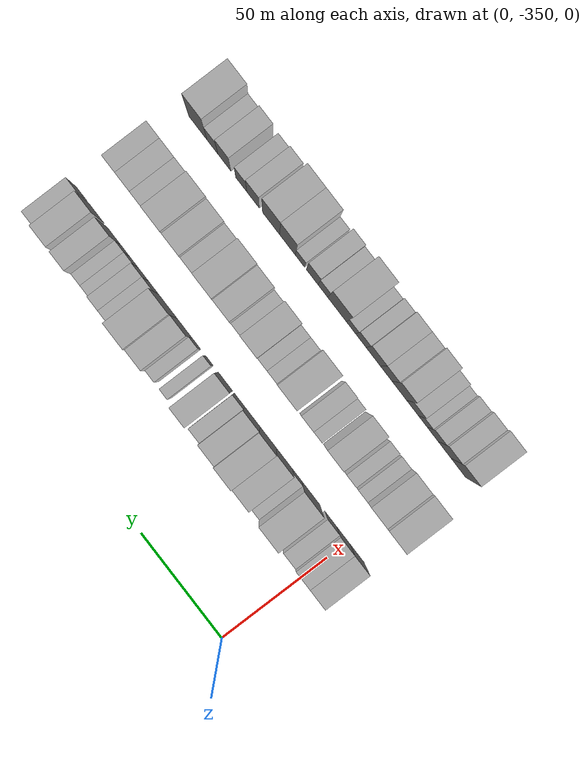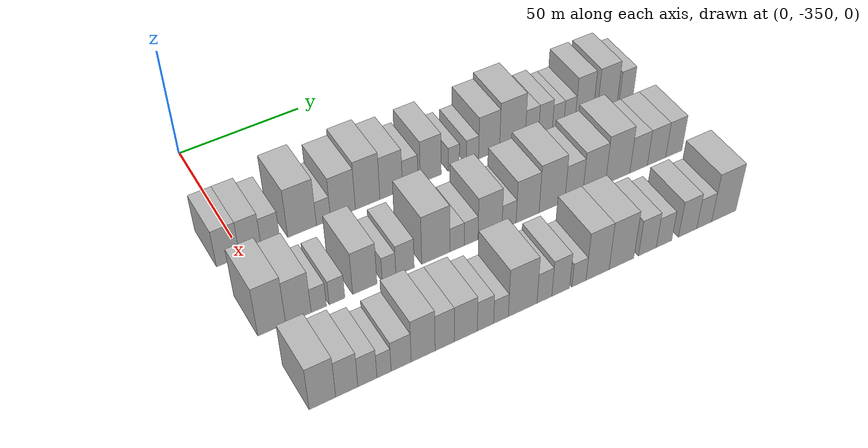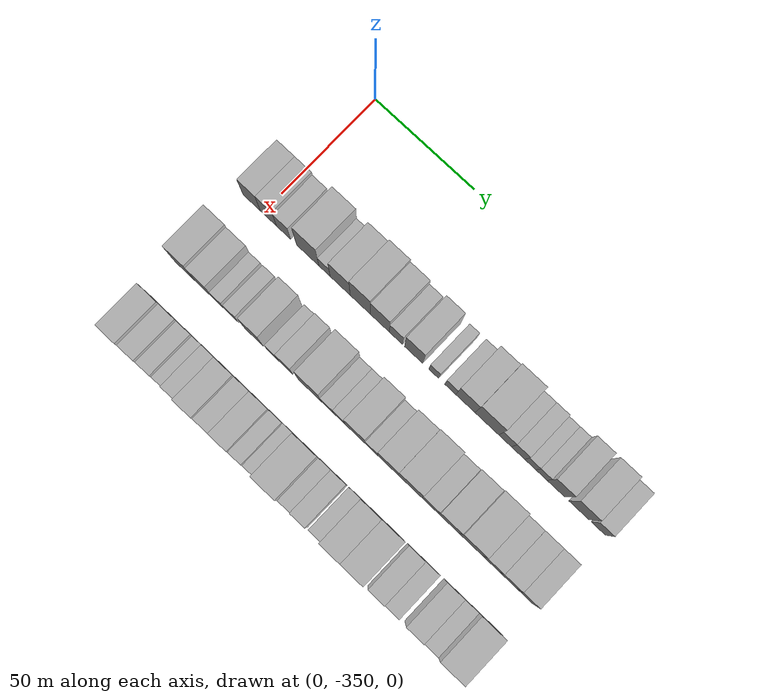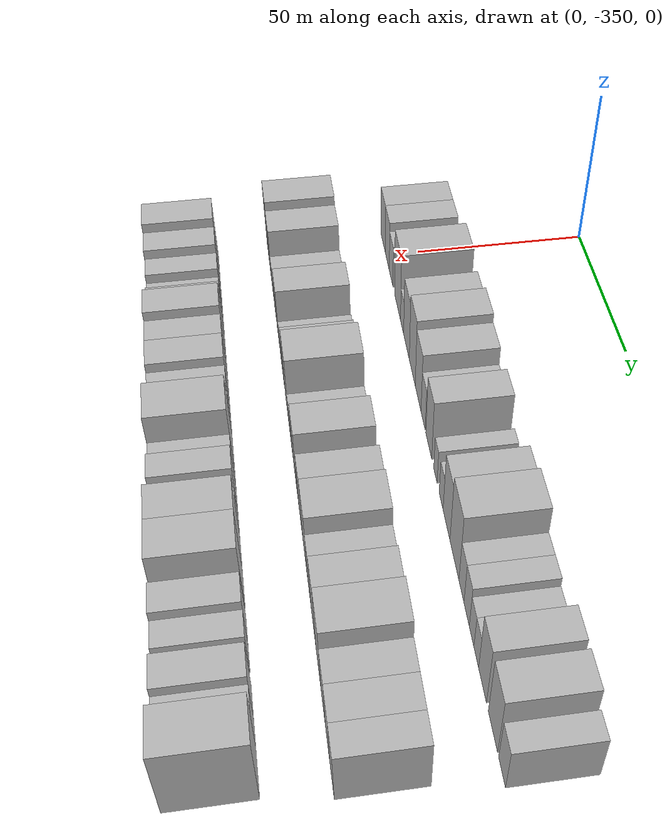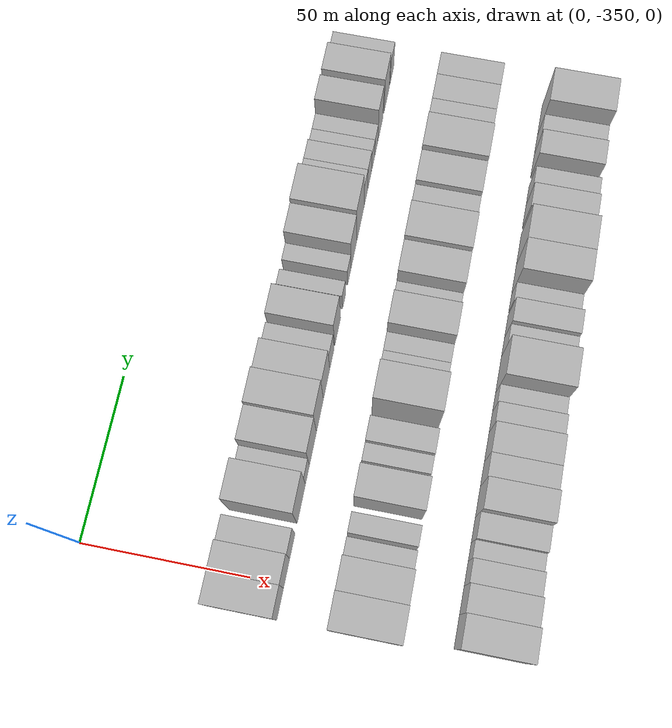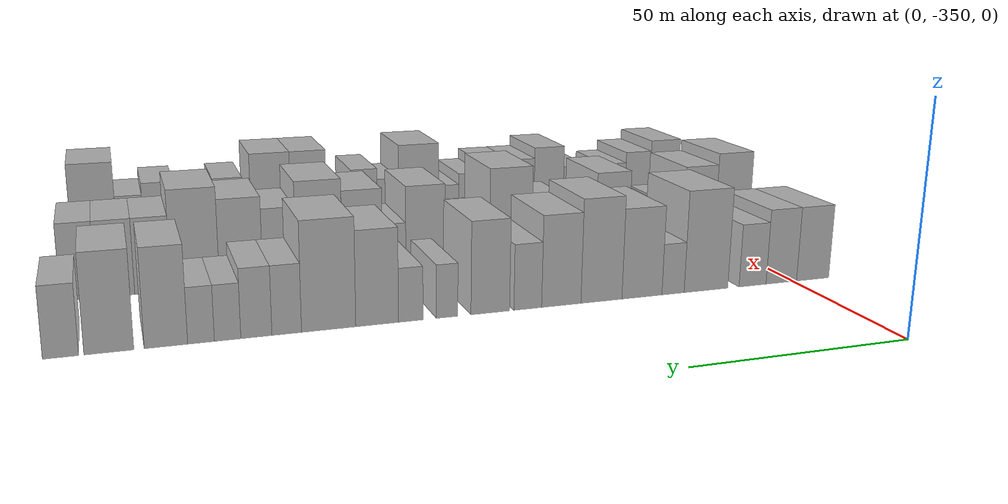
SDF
<sdf version="1.6">
 <world name="default">
  <model name="building_1">
   <static>1</static>
   <pose>50.0000 -355.5543 0 0.000000 0.000000 0.000000</pose>
   <link name="link">
    <pose>0 0 9.00 0 0 0</pose>
    <collision name="collision"><geometry><box><size>20.0000 8.8914 18.0000</size></box></geometry></collision>
    <visual name="visual">
     <cast_shadows>0</cast_shadows>
     <geometry><box><size>20.0000 8.8914 18.0000</size></box></geometry>
     <material>
      <script>
       <uri>model://HANNAS_wall/materials/scripts</uri>
       <uri>model://HANNAS_wall/materials/textures</uri>
       <name>vrc/HANNAS_wall</name>
      </script>
     </material>
    </visual>
   </link>
  </model>
  <model name="building_2">
   <static>1</static>
   <pose>50.0000 -346.9691 0 0.000000 0.000000 0.000000</pose>
   <link name="link">
    <pose>0 0 9.00 0 0 0</pose>
    <collision name="collision"><geometry><box><size>20.0000 8.2791 18.0000</size></box></geometry></collision>
    <visual name="visual">
     <cast_shadows>0</cast_shadows>
     <geometry><box><size>20.0000 8.2791 18.0000</size></box></geometry>
     <material>
      <script>
       <uri>model://HANNAS_wall/materials/scripts</uri>
       <uri>model://HANNAS_wall/materials/textures</uri>
       <name>vrc/HANNAS_wall</name>
      </script>
     </material>
    </visual>
   </link>
  </model>
  <model name="building_3">
   <static>1</static>
   <pose>50.0000 -339.2189 0 0.000000 0.000000 0.000000</pose>
   <link name="link">
    <pose>0 0 7.50 0 0 0</pose>
    <collision name="collision"><geometry><box><size>20.0000 7.2212 15.0000</size></box></geometry></collision>
    <visual name="visual">
     <cast_shadows>0</cast_shadows>
     <geometry><box><size>20.0000 7.2212 15.0000</size></box></geometry>
     <material>
      <script>
       <uri>model://HANNAS_wall/materials/scripts</uri>
       <uri>model://HANNAS_wall/materials/textures</uri>
       <name>vrc/HANNAS_wall</name>
      </script>
     </material>
    </visual>
   </link>
  </model>
  <model name="building_4">
   <static>1</static>
   <pose>50.0000 -326.9329 0 0.000000 0.000000 0.000000</pose>
   <link name="link">
    <pose>0 0 12.00 0 0 0</pose>
    <collision name="collision"><geometry><box><size>20.0000 11.3509 24.0000</size></box></geometry></collision>
    <visual name="visual">
     <cast_shadows>0</cast_shadows>
     <geometry><box><size>20.0000 11.3509 24.0000</size></box></geometry>
     <material>
      <script>
       <uri>model://HANNAS_wall/materials/scripts</uri>
       <uri>model://HANNAS_wall/materials/textures</uri>
       <name>vrc/HANNAS_wall</name>
      </script>
     </material>
    </visual>
   </link>
  </model>
  <model name="building_5">
   <static>1</static>
   <pose>50.0000 -318.4150 0 0.000000 0.000000 0.000000</pose>
   <link name="link">
    <pose>0 0 6.00 0 0 0</pose>
    <collision name="collision"><geometry><box><size>20.0000 5.6850 12.0000</size></box></geometry></collision>
    <visual name="visual">
     <cast_shadows>0</cast_shadows>
     <geometry><box><size>20.0000 5.6850 12.0000</size></box></geometry>
     <material>
      <script>
       <uri>model://HANNAS_wall/materials/scripts</uri>
       <uri>model://HANNAS_wall/materials/textures</uri>
       <name>vrc/HANNAS_wall</name>
      </script>
     </material>
    </visual>
   </link>
  </model>
  <model name="building_6">
   <static>1</static>
   <pose>50.0000 -310.5477 0 0.000000 0.000000 0.000000</pose>
   <link name="link">
    <pose>0 0 10.50 0 0 0</pose>
    <collision name="collision"><geometry><box><size>20.0000 10.0495 21.0000</size></box></geometry></collision>
    <visual name="visual">
     <cast_shadows>0</cast_shadows>
     <geometry><box><size>20.0000 10.0495 21.0000</size></box></geometry>
     <material>
      <script>
       <uri>model://HANNAS_wall/materials/scripts</uri>
       <uri>model://HANNAS_wall/materials/textures</uri>
       <name>vrc/HANNAS_wall</name>
      </script>
     </material>
    </visual>
   </link>
  </model>
  <model name="building_7">
   <static>1</static>
   <pose>50.0000 -300.4793 0 0.000000 0.000000 0.000000</pose>
   <link name="link">
    <pose>0 0 12.00 0 0 0</pose>
    <collision name="collision"><geometry><box><size>20.0000 10.0874 24.0000</size></box></geometry></collision>
    <visual name="visual">
     <cast_shadows>0</cast_shadows>
     <geometry><box><size>20.0000 10.0874 24.0000</size></box></geometry>
     <material>
      <script>
       <uri>model://HANNAS_wall/materials/scripts</uri>
       <uri>model://HANNAS_wall/materials/textures</uri>
       <name>vrc/HANNAS_wall</name>
      </script>
     </material>
    </visual>
   </link>
  </model>
  <model name="building_8">
   <static>1</static>
   <pose>50.0000 -290.7188 0 0.000000 0.000000 0.000000</pose>
   <link name="link">
    <pose>0 0 10.50 0 0 0</pose>
    <collision name="collision"><geometry><box><size>20.0000 9.4337 21.0000</size></box></geometry></collision>
    <visual name="visual">
     <cast_shadows>0</cast_shadows>
     <geometry><box><size>20.0000 9.4337 21.0000</size></box></geometry>
     <material>
      <script>
       <uri>model://HANNAS_wall/materials/scripts</uri>
       <uri>model://HANNAS_wall/materials/textures</uri>
       <name>vrc/HANNAS_wall</name>
      </script>
     </material>
    </visual>
   </link>
  </model>
  <model name="building_9">
   <static>1</static>
   <pose>50.0000 -282.7231 0 0.000000 0.000000 0.000000</pose>
   <link name="link">
    <pose>0 0 7.50 0 0 0</pose>
    <collision name="collision"><geometry><box><size>20.0000 6.5577 15.0000</size></box></geometry></collision>
    <visual name="visual">
     <cast_shadows>0</cast_shadows>
     <geometry><box><size>20.0000 6.5577 15.0000</size></box></geometry>
     <material>
      <script>
       <uri>model://HANNAS_wall/materials/scripts</uri>
       <uri>model://HANNAS_wall/materials/textures</uri>
       <name>vrc/HANNAS_wall</name>
      </script>
     </material>
    </visual>
   </link>
  </model>
  <model name="building_10">
   <static>1</static>
   <pose>50.0000 -273.9683 0 0.000000 0.000000 0.000000</pose>
   <link name="link">
    <pose>0 0 10.50 0 0 0</pose>
    <collision name="collision"><geometry><box><size>20.0000 8.9520 21.0000</size></box></geometry></collision>
    <visual name="visual">
     <cast_shadows>0</cast_shadows>
     <geometry><box><size>20.0000 8.9520 21.0000</size></box></geometry>
     <material>
      <script>
       <uri>model://HANNAS_wall/materials/scripts</uri>
       <uri>model://HANNAS_wall/materials/textures</uri>
       <name>vrc/HANNAS_wall</name>
      </script>
     </material>
    </visual>
   </link>
  </model>
  <model name="building_11">
   <static>1</static>
   <pose>50.0000 -264.0726 0 0.000000 0.000000 0.000000</pose>
   <link name="link">
    <pose>0 0 6.00 0 0 0</pose>
    <collision name="collision"><geometry><box><size>20.0000 4.8393 12.0000</size></box></geometry></collision>
    <visual name="visual">
     <cast_shadows>0</cast_shadows>
     <geometry><box><size>20.0000 4.8393 12.0000</size></box></geometry>
     <material>
      <script>
       <uri>model://HANNAS_wall/materials/scripts</uri>
       <uri>model://HANNAS_wall/materials/textures</uri>
       <name>vrc/HANNAS_wall</name>
      </script>
     </material>
    </visual>
   </link>
  </model>
  <model name="building_12">
   <static>1</static>
   <pose>50.0000 -255.9314 0 0.000000 0.000000 0.000000</pose>
   <link name="link">
    <pose>0 0 6.00 0 0 0</pose>
    <collision name="collision"><geometry><box><size>20.0000 5.4432 12.0000</size></box></geometry></collision>
    <visual name="visual">
     <cast_shadows>0</cast_shadows>
     <geometry><box><size>20.0000 5.4432 12.0000</size></box></geometry>
     <material>
      <script>
       <uri>model://HANNAS_wall/materials/scripts</uri>
       <uri>model://HANNAS_wall/materials/textures</uri>
       <name>vrc/HANNAS_wall</name>
      </script>
     </material>
    </visual>
   </link>
  </model>
  <model name="building_13">
   <static>1</static>
   <pose>50.0000 -248.5627 0 0.000000 0.000000 0.000000</pose>
   <link name="link">
    <pose>0 0 10.50 0 0 0</pose>
    <collision name="collision"><geometry><box><size>20.0000 9.2942 21.0000</size></box></geometry></collision>
    <visual name="visual">
     <cast_shadows>0</cast_shadows>
     <geometry><box><size>20.0000 9.2942 21.0000</size></box></geometry>
     <material>
      <script>
       <uri>model://HANNAS_wall/materials/scripts</uri>
       <uri>model://HANNAS_wall/materials/textures</uri>
       <name>vrc/HANNAS_wall</name>
      </script>
     </material>
    </visual>
   </link>
  </model>
  <model name="building_14">
   <static>1</static>
   <pose>50.0000 -238.1467 0 0.000000 0.000000 0.000000</pose>
   <link name="link">
    <pose>0 0 12.00 0 0 0</pose>
    <collision name="collision"><geometry><box><size>20.0000 11.5378 24.0000</size></box></geometry></collision>
    <visual name="visual">
     <cast_shadows>0</cast_shadows>
     <geometry><box><size>20.0000 11.5378 24.0000</size></box></geometry>
     <material>
      <script>
       <uri>model://HANNAS_wall/materials/scripts</uri>
       <uri>model://HANNAS_wall/materials/textures</uri>
       <name>vrc/HANNAS_wall</name>
      </script>
     </material>
    </visual>
   </link>
  </model>
  <model name="building_15">
   <static>1</static>
   <pose>50.0000 -229.2953 0 0.000000 0.000000 0.000000</pose>
   <link name="link">
    <pose>0 0 7.50 0 0 0</pose>
    <collision name="collision"><geometry><box><size>20.0000 6.1651 15.0000</size></box></geometry></collision>
    <visual name="visual">
     <cast_shadows>0</cast_shadows>
     <geometry><box><size>20.0000 6.1651 15.0000</size></box></geometry>
     <material>
      <script>
       <uri>model://HANNAS_wall/materials/scripts</uri>
       <uri>model://HANNAS_wall/materials/textures</uri>
       <name>vrc/HANNAS_wall</name>
      </script>
     </material>
    </visual>
   </link>
  </model>
  <model name="building_16">
   <static>1</static>
   <pose>50.0000 -223.0267 0 0.000000 0.000000 0.000000</pose>
   <link name="link">
    <pose>0 0 7.50 0 0 0</pose>
    <collision name="collision"><geometry><box><size>20.0000 6.3720 15.0000</size></box></geometry></collision>
    <visual name="visual">
     <cast_shadows>0</cast_shadows>
     <geometry><box><size>20.0000 6.3720 15.0000</size></box></geometry>
     <material>
      <script>
       <uri>model://HANNAS_wall/materials/scripts</uri>
       <uri>model://HANNAS_wall/materials/textures</uri>
       <name>vrc/HANNAS_wall</name>
      </script>
     </material>
    </visual>
   </link>
  </model>
  <model name="building_17">
   <static>1</static>
   <pose>50.0000 -217.1712 0 0.000000 0.000000 0.000000</pose>
   <link name="link">
    <pose>0 0 6.00 0 0 0</pose>
    <collision name="collision"><geometry><box><size>20.0000 5.3390 12.0000</size></box></geometry></collision>
    <visual name="visual">
     <cast_shadows>0</cast_shadows>
     <geometry><box><size>20.0000 5.3390 12.0000</size></box></geometry>
     <material>
      <script>
       <uri>model://HANNAS_wall/materials/scripts</uri>
       <uri>model://HANNAS_wall/materials/textures</uri>
       <name>vrc/HANNAS_wall</name>
      </script>
     </material>
    </visual>
   </link>
  </model>
  <model name="building_18">
   <static>1</static>
   <pose>50.0000 -211.8315 0 0.000000 0.000000 0.000000</pose>
   <link name="link">
    <pose>0 0 6.00 0 0 0</pose>
    <collision name="collision"><geometry><box><size>20.0000 5.3403 12.0000</size></box></geometry></collision>
    <visual name="visual">
     <cast_shadows>0</cast_shadows>
     <geometry><box><size>20.0000 5.3403 12.0000</size></box></geometry>
     <material>
      <script>
       <uri>model://HANNAS_wall/materials/scripts</uri>
       <uri>model://HANNAS_wall/materials/textures</uri>
       <name>vrc/HANNAS_wall</name>
      </script>
     </material>
    </visual>
   </link>
  </model>
  <model name="building_19">
   <static>1</static>
   <pose>50.0000 -204.9044 0 0.000000 0.000000 0.000000</pose>
   <link name="link">
    <pose>0 0 10.50 0 0 0</pose>
    <collision name="collision"><geometry><box><size>20.0000 8.5139 21.0000</size></box></geometry></collision>
    <visual name="visual">
     <cast_shadows>0</cast_shadows>
     <geometry><box><size>20.0000 8.5139 21.0000</size></box></geometry>
     <material>
      <script>
       <uri>model://HANNAS_wall/materials/scripts</uri>
       <uri>model://HANNAS_wall/materials/textures</uri>
       <name>vrc/HANNAS_wall</name>
      </script>
     </material>
    </visual>
   </link>
  </model>
  <model name="building_20">
   <static>1</static>
   <pose>50.0000 -193.8881 0 0.000000 0.000000 0.000000</pose>
   <link name="link">
    <pose>0 0 10.50 0 0 0</pose>
    <collision name="collision"><geometry><box><size>20.0000 9.5186 21.0000</size></box></geometry></collision>
    <visual name="visual">
     <cast_shadows>0</cast_shadows>
     <geometry><box><size>20.0000 9.5186 21.0000</size></box></geometry>
     <material>
      <script>
       <uri>model://HANNAS_wall/materials/scripts</uri>
       <uri>model://HANNAS_wall/materials/textures</uri>
       <name>vrc/HANNAS_wall</name>
      </script>
     </material>
    </visual>
   </link>
  </model>
  <model name="building_21">
   <static>1</static>
   <pose>50.0000 -184.7525 0 0.000000 0.000000 0.000000</pose>
   <link name="link">
    <pose>0 0 7.50 0 0 0</pose>
    <collision name="collision"><geometry><box><size>20.0000 6.7527 15.0000</size></box></geometry></collision>
    <visual name="visual">
     <cast_shadows>0</cast_shadows>
     <geometry><box><size>20.0000 6.7527 15.0000</size></box></geometry>
     <material>
      <script>
       <uri>model://HANNAS_wall/materials/scripts</uri>
       <uri>model://HANNAS_wall/materials/textures</uri>
       <name>vrc/HANNAS_wall</name>
      </script>
     </material>
    </visual>
   </link>
  </model>
  <model name="building_80">
   <static>1</static>
   <pose>85.0000 -354.8889 0 0.000000 0.000000 0.000000</pose>
   <link name="link">
    <pose>0 0 12.00 0 0 0</pose>
    <collision name="collision"><geometry><box><size>20.0000 10.2222 24.0000</size></box></geometry></collision>
    <visual name="visual">
     <cast_shadows>0</cast_shadows>
     <geometry><box><size>20.0000 10.2222 24.0000</size></box></geometry>
     <material>
      <script>
       <uri>model://HANNAS_wall/materials/scripts</uri>
       <uri>model://HANNAS_wall/materials/textures</uri>
       <name>vrc/HANNAS_wall</name>
      </script>
     </material>
    </visual>
   </link>
  </model>
  <model name="building_81">
   <static>1</static>
   <pose>85.0000 -345.0413 0 0.000000 0.000000 0.000000</pose>
   <link name="link">
    <pose>0 0 10.50 0 0 0</pose>
    <collision name="collision"><geometry><box><size>20.0000 9.4729 21.0000</size></box></geometry></collision>
    <visual name="visual">
     <cast_shadows>0</cast_shadows>
     <geometry><box><size>20.0000 9.4729 21.0000</size></box></geometry>
     <material>
      <script>
       <uri>model://HANNAS_wall/materials/scripts</uri>
       <uri>model://HANNAS_wall/materials/textures</uri>
       <name>vrc/HANNAS_wall</name>
      </script>
     </material>
    </visual>
   </link>
  </model>
  <model name="building_82">
   <static>1</static>
   <pose>85.0000 -337.4258 0 0.000000 0.000000 0.000000</pose>
   <link name="link">
    <pose>0 0 6.00 0 0 0</pose>
    <collision name="collision"><geometry><box><size>20.0000 5.7582 12.0000</size></box></geometry></collision>
    <visual name="visual">
     <cast_shadows>0</cast_shadows>
     <geometry><box><size>20.0000 5.7582 12.0000</size></box></geometry>
     <material>
      <script>
       <uri>model://HANNAS_wall/materials/scripts</uri>
       <uri>model://HANNAS_wall/materials/textures</uri>
       <name>vrc/HANNAS_wall</name>
      </script>
     </material>
    </visual>
   </link>
  </model>
  <model name="building_83">
   <static>1</static>
   <pose>85.0000 -330.5669 0 0.000000 0.000000 0.000000</pose>
   <link name="link">
    <pose>0 0 6.00 0 0 0</pose>
    <collision name="collision"><geometry><box><size>20.0000 5.9597 12.0000</size></box></geometry></collision>
    <visual name="visual">
     <cast_shadows>0</cast_shadows>
     <geometry><box><size>20.0000 5.9597 12.0000</size></box></geometry>
     <material>
      <script>
       <uri>model://HANNAS_wall/materials/scripts</uri>
       <uri>model://HANNAS_wall/materials/textures</uri>
       <name>vrc/HANNAS_wall</name>
      </script>
     </material>
    </visual>
   </link>
  </model>
  <model name="building_84">
   <static>1</static>
   <pose>85.0000 -319.8763 0 0.000000 0.000000 0.000000</pose>
   <link name="link">
    <pose>0 0 10.50 0 0 0</pose>
    <collision name="collision"><geometry><box><size>20.0000 9.4215 21.0000</size></box></geometry></collision>
    <visual name="visual">
     <cast_shadows>0</cast_shadows>
     <geometry><box><size>20.0000 9.4215 21.0000</size></box></geometry>
     <material>
      <script>
       <uri>model://HANNAS_wall/materials/scripts</uri>
       <uri>model://HANNAS_wall/materials/textures</uri>
       <name>vrc/HANNAS_wall</name>
      </script>
     </material>
    </visual>
   </link>
  </model>
  <model name="building_85">
   <static>1</static>
   <pose>85.0000 -310.4702 0 0.000000 0.000000 0.000000</pose>
   <link name="link">
    <pose>0 0 6.00 0 0 0</pose>
    <collision name="collision"><geometry><box><size>20.0000 5.3906 12.0000</size></box></geometry></collision>
    <visual name="visual">
     <cast_shadows>0</cast_shadows>
     <geometry><box><size>20.0000 5.3906 12.0000</size></box></geometry>
     <material>
      <script>
       <uri>model://HANNAS_wall/materials/scripts</uri>
       <uri>model://HANNAS_wall/materials/textures</uri>
       <name>vrc/HANNAS_wall</name>
      </script>
     </material>
    </visual>
   </link>
  </model>
  <model name="building_86">
   <static>1</static>
   <pose>85.0000 -304.1264 0 0.000000 0.000000 0.000000</pose>
   <link name="link">
    <pose>0 0 7.50 0 0 0</pose>
    <collision name="collision"><geometry><box><size>20.0000 7.2970 15.0000</size></box></geometry></collision>
    <visual name="visual">
     <cast_shadows>0</cast_shadows>
     <geometry><box><size>20.0000 7.2970 15.0000</size></box></geometry>
     <material>
      <script>
       <uri>model://HANNAS_wall/materials/scripts</uri>
       <uri>model://HANNAS_wall/materials/textures</uri>
       <name>vrc/HANNAS_wall</name>
      </script>
     </material>
    </visual>
   </link>
  </model>
  <model name="building_87">
   <static>1</static>
   <pose>85.0000 -291.8405 0 0.000000 0.000000 0.000000</pose>
   <link name="link">
    <pose>0 0 12.00 0 0 0</pose>
    <collision name="collision"><geometry><box><size>20.0000 11.2748 24.0000</size></box></geometry></collision>
    <visual name="visual">
     <cast_shadows>0</cast_shadows>
     <geometry><box><size>20.0000 11.2748 24.0000</size></box></geometry>
     <material>
      <script>
       <uri>model://HANNAS_wall/materials/scripts</uri>
       <uri>model://HANNAS_wall/materials/textures</uri>
       <name>vrc/HANNAS_wall</name>
      </script>
     </material>
    </visual>
   </link>
  </model>
  <model name="building_88">
   <static>1</static>
   <pose>85.0000 -283.2173 0 0.000000 0.000000 0.000000</pose>
   <link name="link">
    <pose>0 0 6.00 0 0 0</pose>
    <collision name="collision"><geometry><box><size>20.0000 5.9716 12.0000</size></box></geometry></collision>
    <visual name="visual">
     <cast_shadows>0</cast_shadows>
     <geometry><box><size>20.0000 5.9716 12.0000</size></box></geometry>
     <material>
      <script>
       <uri>model://HANNAS_wall/materials/scripts</uri>
       <uri>model://HANNAS_wall/materials/textures</uri>
       <name>vrc/HANNAS_wall</name>
      </script>
     </material>
    </visual>
   </link>
  </model>
  <model name="building_89">
   <static>1</static>
   <pose>85.0000 -277.3785 0 0.000000 0.000000 0.000000</pose>
   <link name="link">
    <pose>0 0 6.00 0 0 0</pose>
    <collision name="collision"><geometry><box><size>20.0000 5.7058 12.0000</size></box></geometry></collision>
    <visual name="visual">
     <cast_shadows>0</cast_shadows>
     <geometry><box><size>20.0000 5.7058 12.0000</size></box></geometry>
     <material>
      <script>
       <uri>model://HANNAS_wall/materials/scripts</uri>
       <uri>model://HANNAS_wall/materials/textures</uri>
       <name>vrc/HANNAS_wall</name>
      </script>
     </material>
    </visual>
   </link>
  </model>
  <model name="building_90">
   <static>1</static>
   <pose>85.0000 -269.5263 0 0.000000 0.000000 0.000000</pose>
   <link name="link">
    <pose>0 0 10.50 0 0 0</pose>
    <collision name="collision"><geometry><box><size>20.0000 9.9986 21.0000</size></box></geometry></collision>
    <visual name="visual">
     <cast_shadows>0</cast_shadows>
     <geometry><box><size>20.0000 9.9986 21.0000</size></box></geometry>
     <material>
      <script>
       <uri>model://HANNAS_wall/materials/scripts</uri>
       <uri>model://HANNAS_wall/materials/textures</uri>
       <name>vrc/HANNAS_wall</name>
      </script>
     </material>
    </visual>
   </link>
  </model>
  <model name="building_91">
   <static>1</static>
   <pose>85.0000 -261.5423 0 0.000000 0.000000 0.000000</pose>
   <link name="link">
    <pose>0 0 6.00 0 0 0</pose>
    <collision name="collision"><geometry><box><size>20.0000 5.9695 12.0000</size></box></geometry></collision>
    <visual name="visual">
     <cast_shadows>0</cast_shadows>
     <geometry><box><size>20.0000 5.9695 12.0000</size></box></geometry>
     <material>
      <script>
       <uri>model://HANNAS_wall/materials/scripts</uri>
       <uri>model://HANNAS_wall/materials/textures</uri>
       <name>vrc/HANNAS_wall</name>
      </script>
     </material>
    </visual>
   </link>
  </model>
  <model name="building_92">
   <static>1</static>
   <pose>85.0000 -253.6168 0 0.000000 0.000000 0.000000</pose>
   <link name="link">
    <pose>0 0 10.50 0 0 0</pose>
    <collision name="collision"><geometry><box><size>20.0000 9.8814 21.0000</size></box></geometry></collision>
    <visual name="visual">
     <cast_shadows>0</cast_shadows>
     <geometry><box><size>20.0000 9.8814 21.0000</size></box></geometry>
     <material>
      <script>
       <uri>model://HANNAS_wall/materials/scripts</uri>
       <uri>model://HANNAS_wall/materials/textures</uri>
       <name>vrc/HANNAS_wall</name>
      </script>
     </material>
    </visual>
   </link>
  </model>
  <model name="building_93">
   <static>1</static>
   <pose>85.0000 -243.0681 0 0.000000 0.000000 0.000000</pose>
   <link name="link">
    <pose>0 0 12.00 0 0 0</pose>
    <collision name="collision"><geometry><box><size>20.0000 11.2159 24.0000</size></box></geometry></collision>
    <visual name="visual">
     <cast_shadows>0</cast_shadows>
     <geometry><box><size>20.0000 11.2159 24.0000</size></box></geometry>
     <material>
      <script>
       <uri>model://HANNAS_wall/materials/scripts</uri>
       <uri>model://HANNAS_wall/materials/textures</uri>
       <name>vrc/HANNAS_wall</name>
      </script>
     </material>
    </visual>
   </link>
  </model>
  <model name="building_94">
   <static>1</static>
   <pose>85.0000 -233.4861 0 0.000000 0.000000 0.000000</pose>
   <link name="link">
    <pose>0 0 9.00 0 0 0</pose>
    <collision name="collision"><geometry><box><size>20.0000 7.9481 18.0000</size></box></geometry></collision>
    <visual name="visual">
     <cast_shadows>0</cast_shadows>
     <geometry><box><size>20.0000 7.9481 18.0000</size></box></geometry>
     <material>
      <script>
       <uri>model://HANNAS_wall/materials/scripts</uri>
       <uri>model://HANNAS_wall/materials/textures</uri>
       <name>vrc/HANNAS_wall</name>
      </script>
     </material>
    </visual>
   </link>
  </model>
  <model name="building_95">
   <static>1</static>
   <pose>85.0000 -224.4454 0 0.000000 0.000000 0.000000</pose>
   <link name="link">
    <pose>0 0 10.50 0 0 0</pose>
    <collision name="collision"><geometry><box><size>20.0000 10.1334 21.0000</size></box></geometry></collision>
    <visual name="visual">
     <cast_shadows>0</cast_shadows>
     <geometry><box><size>20.0000 10.1334 21.0000</size></box></geometry>
     <material>
      <script>
       <uri>model://HANNAS_wall/materials/scripts</uri>
       <uri>model://HANNAS_wall/materials/textures</uri>
       <name>vrc/HANNAS_wall</name>
      </script>
     </material>
    </visual>
   </link>
  </model>
  <model name="building_96">
   <static>1</static>
   <pose>85.0000 -213.8210 0 0.000000 0.000000 0.000000</pose>
   <link name="link">
    <pose>0 0 12.00 0 0 0</pose>
    <collision name="collision"><geometry><box><size>20.0000 11.1152 24.0000</size></box></geometry></collision>
    <visual name="visual">
     <cast_shadows>0</cast_shadows>
     <geometry><box><size>20.0000 11.1152 24.0000</size></box></geometry>
     <material>
      <script>
       <uri>model://HANNAS_wall/materials/scripts</uri>
       <uri>model://HANNAS_wall/materials/textures</uri>
       <name>vrc/HANNAS_wall</name>
      </script>
     </material>
    </visual>
   </link>
  </model>
  <model name="building_97">
   <static>1</static>
   <pose>85.0000 -204.2113 0 0.000000 0.000000 0.000000</pose>
   <link name="link">
    <pose>0 0 9.00 0 0 0</pose>
    <collision name="collision"><geometry><box><size>20.0000 8.1043 18.0000</size></box></geometry></collision>
    <visual name="visual">
     <cast_shadows>0</cast_shadows>
     <geometry><box><size>20.0000 8.1043 18.0000</size></box></geometry>
     <material>
      <script>
       <uri>model://HANNAS_wall/materials/scripts</uri>
       <uri>model://HANNAS_wall/materials/textures</uri>
       <name>vrc/HANNAS_wall</name>
      </script>
     </material>
    </visual>
   </link>
  </model>
  <model name="building_98">
   <static>1</static>
   <pose>85.0000 -195.8893 0 0.000000 0.000000 0.000000</pose>
   <link name="link">
    <pose>0 0 9.00 0 0 0</pose>
    <collision name="collision"><geometry><box><size>20.0000 8.5395 18.0000</size></box></geometry></collision>
    <visual name="visual">
     <cast_shadows>0</cast_shadows>
     <geometry><box><size>20.0000 8.5395 18.0000</size></box></geometry>
     <material>
      <script>
       <uri>model://HANNAS_wall/materials/scripts</uri>
       <uri>model://HANNAS_wall/materials/textures</uri>
       <name>vrc/HANNAS_wall</name>
      </script>
     </material>
    </visual>
   </link>
  </model>
  <model name="building_99">
   <static>1</static>
   <pose>85.0000 -187.7762 0 0.000000 0.000000 0.000000</pose>
   <link name="link">
    <pose>0 0 9.00 0 0 0</pose>
    <collision name="collision"><geometry><box><size>20.0000 7.6868 18.0000</size></box></geometry></collision>
    <visual name="visual">
     <cast_shadows>0</cast_shadows>
     <geometry><box><size>20.0000 7.6868 18.0000</size></box></geometry>
     <material>
      <script>
       <uri>model://HANNAS_wall/materials/scripts</uri>
       <uri>model://HANNAS_wall/materials/textures</uri>
       <name>vrc/HANNAS_wall</name>
      </script>
     </material>
    </visual>
   </link>
  </model>
  <model name="building_165">
   <static>1</static>
   <pose>120.0000 -353.2977 0 0.000000 0.000000 0.000000</pose>
   <link name="link">
    <pose>0 0 10.50 0 0 0</pose>
    <collision name="collision"><geometry><box><size>20.0000 9.4045 21.0000</size></box></geometry></collision>
    <visual name="visual">
     <cast_shadows>0</cast_shadows>
     <geometry><box><size>20.0000 9.4045 21.0000</size></box></geometry>
     <material>
      <script>
       <uri>model://HANNAS_wall/materials/scripts</uri>
       <uri>model://HANNAS_wall/materials/textures</uri>
       <name>vrc/HANNAS_wall</name>
      </script>
     </material>
    </visual>
   </link>
  </model>
  <model name="building_166">
   <static>1</static>
   <pose>120.0000 -344.6159 0 0.000000 0.000000 0.000000</pose>
   <link name="link">
    <pose>0 0 9.00 0 0 0</pose>
    <collision name="collision"><geometry><box><size>20.0000 7.9591 18.0000</size></box></geometry></collision>
    <visual name="visual">
     <cast_shadows>0</cast_shadows>
     <geometry><box><size>20.0000 7.9591 18.0000</size></box></geometry>
     <material>
      <script>
       <uri>model://HANNAS_wall/materials/scripts</uri>
       <uri>model://HANNAS_wall/materials/textures</uri>
       <name>vrc/HANNAS_wall</name>
      </script>
     </material>
    </visual>
   </link>
  </model>
  <model name="building_167">
   <static>1</static>
   <pose>120.0000 -337.1858 0 0.000000 0.000000 0.000000</pose>
   <link name="link">
    <pose>0 0 7.50 0 0 0</pose>
    <collision name="collision"><geometry><box><size>20.0000 6.9013 15.0000</size></box></geometry></collision>
    <visual name="visual">
     <cast_shadows>0</cast_shadows>
     <geometry><box><size>20.0000 6.9013 15.0000</size></box></geometry>
     <material>
      <script>
       <uri>model://HANNAS_wall/materials/scripts</uri>
       <uri>model://HANNAS_wall/materials/textures</uri>
       <name>vrc/HANNAS_wall</name>
      </script>
     </material>
    </visual>
   </link>
  </model>
  <model name="building_168">
   <static>1</static>
   <pose>120.0000 -331.1263 0 0.000000 0.000000 0.000000</pose>
   <link name="link">
    <pose>0 0 6.00 0 0 0</pose>
    <collision name="collision"><geometry><box><size>20.0000 5.2177 12.0000</size></box></geometry></collision>
    <visual name="visual">
     <cast_shadows>0</cast_shadows>
     <geometry><box><size>20.0000 5.2177 12.0000</size></box></geometry>
     <material>
      <script>
       <uri>model://HANNAS_wall/materials/scripts</uri>
       <uri>model://HANNAS_wall/materials/textures</uri>
       <name>vrc/HANNAS_wall</name>
      </script>
     </material>
    </visual>
   </link>
  </model>
  <model name="building_169">
   <static>1</static>
   <pose>120.0000 -324.7947 0 0.000000 0.000000 0.000000</pose>
   <link name="link">
    <pose>0 0 7.50 0 0 0</pose>
    <collision name="collision"><geometry><box><size>20.0000 7.4456 15.0000</size></box></geometry></collision>
    <visual name="visual">
     <cast_shadows>0</cast_shadows>
     <geometry><box><size>20.0000 7.4456 15.0000</size></box></geometry>
     <material>
      <script>
       <uri>model://HANNAS_wall/materials/scripts</uri>
       <uri>model://HANNAS_wall/materials/textures</uri>
       <name>vrc/HANNAS_wall</name>
      </script>
     </material>
    </visual>
   </link>
  </model>
  <model name="building_170">
   <static>1</static>
   <pose>120.0000 -316.5774 0 0.000000 0.000000 0.000000</pose>
   <link name="link">
    <pose>0 0 10.50 0 0 0</pose>
    <collision name="collision"><geometry><box><size>20.0000 8.9890 21.0000</size></box></geometry></collision>
    <visual name="visual">
     <cast_shadows>0</cast_shadows>
     <geometry><box><size>20.0000 8.9890 21.0000</size></box></geometry>
     <material>
      <script>
       <uri>model://HANNAS_wall/materials/scripts</uri>
       <uri>model://HANNAS_wall/materials/textures</uri>
       <name>vrc/HANNAS_wall</name>
      </script>
     </material>
    </visual>
   </link>
  </model>
  <model name="building_171">
   <static>1</static>
   <pose>120.0000 -308.4353 0 0.000000 0.000000 0.000000</pose>
   <link name="link">
    <pose>0 0 9.00 0 0 0</pose>
    <collision name="collision"><geometry><box><size>20.0000 7.2953 18.0000</size></box></geometry></collision>
    <visual name="visual">
     <cast_shadows>0</cast_shadows>
     <geometry><box><size>20.0000 7.2953 18.0000</size></box></geometry>
     <material>
      <script>
       <uri>model://HANNAS_wall/materials/scripts</uri>
       <uri>model://HANNAS_wall/materials/textures</uri>
       <name>vrc/HANNAS_wall</name>
      </script>
     </material>
    </visual>
   </link>
  </model>
  <model name="building_172">
   <static>1</static>
   <pose>120.0000 -300.3467 0 0.000000 0.000000 0.000000</pose>
   <link name="link">
    <pose>0 0 9.00 0 0 0</pose>
    <collision name="collision"><geometry><box><size>20.0000 8.8818 18.0000</size></box></geometry></collision>
    <visual name="visual">
     <cast_shadows>0</cast_shadows>
     <geometry><box><size>20.0000 8.8818 18.0000</size></box></geometry>
     <material>
      <script>
       <uri>model://HANNAS_wall/materials/scripts</uri>
       <uri>model://HANNAS_wall/materials/textures</uri>
       <name>vrc/HANNAS_wall</name>
      </script>
     </material>
    </visual>
   </link>
  </model>
  <model name="building_173">
   <static>1</static>
   <pose>120.0000 -292.7023 0 0.000000 0.000000 0.000000</pose>
   <link name="link">
    <pose>0 0 7.50 0 0 0</pose>
    <collision name="collision"><geometry><box><size>20.0000 6.4070 15.0000</size></box></geometry></collision>
    <visual name="visual">
     <cast_shadows>0</cast_shadows>
     <geometry><box><size>20.0000 6.4070 15.0000</size></box></geometry>
     <material>
      <script>
       <uri>model://HANNAS_wall/materials/scripts</uri>
       <uri>model://HANNAS_wall/materials/textures</uri>
       <name>vrc/HANNAS_wall</name>
      </script>
     </material>
    </visual>
   </link>
  </model>
  <model name="building_174">
   <static>1</static>
   <pose>120.0000 -286.5997 0 0.000000 0.000000 0.000000</pose>
   <link name="link">
    <pose>0 0 6.00 0 0 0</pose>
    <collision name="collision"><geometry><box><size>20.0000 5.7983 12.0000</size></box></geometry></collision>
    <visual name="visual">
     <cast_shadows>0</cast_shadows>
     <geometry><box><size>20.0000 5.7983 12.0000</size></box></geometry>
     <material>
      <script>
       <uri>model://HANNAS_wall/materials/scripts</uri>
       <uri>model://HANNAS_wall/materials/textures</uri>
       <name>vrc/HANNAS_wall</name>
      </script>
     </material>
    </visual>
   </link>
  </model>
  <model name="building_175">
   <static>1</static>
   <pose>120.0000 -277.9554 0 0.000000 0.000000 0.000000</pose>
   <link name="link">
    <pose>0 0 12.00 0 0 0</pose>
    <collision name="collision"><geometry><box><size>20.0000 11.4902 24.0000</size></box></geometry></collision>
    <visual name="visual">
     <cast_shadows>0</cast_shadows>
     <geometry><box><size>20.0000 11.4902 24.0000</size></box></geometry>
     <material>
      <script>
       <uri>model://HANNAS_wall/materials/scripts</uri>
       <uri>model://HANNAS_wall/materials/textures</uri>
       <name>vrc/HANNAS_wall</name>
      </script>
     </material>
    </visual>
   </link>
  </model>
  <model name="building_176">
   <static>1</static>
   <pose>120.0000 -269.1842 0 0.000000 0.000000 0.000000</pose>
   <link name="link">
    <pose>0 0 7.50 0 0 0</pose>
    <collision name="collision"><geometry><box><size>20.0000 6.0522 15.0000</size></box></geometry></collision>
    <visual name="visual">
     <cast_shadows>0</cast_shadows>
     <geometry><box><size>20.0000 6.0522 15.0000</size></box></geometry>
     <material>
      <script>
       <uri>model://HANNAS_wall/materials/scripts</uri>
       <uri>model://HANNAS_wall/materials/textures</uri>
       <name>vrc/HANNAS_wall</name>
      </script>
     </material>
    </visual>
   </link>
  </model>
  <model name="building_177">
   <static>1</static>
   <pose>120.0000 -262.5202 0 0.000000 0.000000 0.000000</pose>
   <link name="link">
    <pose>0 0 9.00 0 0 0</pose>
    <collision name="collision"><geometry><box><size>20.0000 7.2758 18.0000</size></box></geometry></collision>
    <visual name="visual">
     <cast_shadows>0</cast_shadows>
     <geometry><box><size>20.0000 7.2758 18.0000</size></box></geometry>
     <material>
      <script>
       <uri>model://HANNAS_wall/materials/scripts</uri>
       <uri>model://HANNAS_wall/materials/textures</uri>
       <name>vrc/HANNAS_wall</name>
      </script>
     </material>
    </visual>
   </link>
  </model>
  <model name="building_178">
   <static>1</static>
   <pose>120.0000 -254.9695 0 0.000000 0.000000 0.000000</pose>
   <link name="link">
    <pose>0 0 6.00 0 0 0</pose>
    <collision name="collision"><geometry><box><size>20.0000 5.8258 12.0000</size></box></geometry></collision>
    <visual name="visual">
     <cast_shadows>0</cast_shadows>
     <geometry><box><size>20.0000 5.8258 12.0000</size></box></geometry>
     <material>
      <script>
       <uri>model://HANNAS_wall/materials/scripts</uri>
       <uri>model://HANNAS_wall/materials/textures</uri>
       <name>vrc/HANNAS_wall</name>
      </script>
     </material>
    </visual>
   </link>
  </model>
  <model name="building_179">
   <static>1</static>
   <pose>120.0000 -247.1987 0 0.000000 0.000000 0.000000</pose>
   <link name="link">
    <pose>0 0 12.00 0 0 0</pose>
    <collision name="collision"><geometry><box><size>20.0000 9.7158 24.0000</size></box></geometry></collision>
    <visual name="visual">
     <cast_shadows>0</cast_shadows>
     <geometry><box><size>20.0000 9.7158 24.0000</size></box></geometry>
     <material>
      <script>
       <uri>model://HANNAS_wall/materials/scripts</uri>
       <uri>model://HANNAS_wall/materials/textures</uri>
       <name>vrc/HANNAS_wall</name>
      </script>
     </material>
    </visual>
   </link>
  </model>
  <model name="building_180">
   <static>1</static>
   <pose>120.0000 -237.0390 0 0.000000 0.000000 0.000000</pose>
   <link name="link">
    <pose>0 0 12.00 0 0 0</pose>
    <collision name="collision"><geometry><box><size>20.0000 10.6035 24.0000</size></box></geometry></collision>
    <visual name="visual">
     <cast_shadows>0</cast_shadows>
     <geometry><box><size>20.0000 10.6035 24.0000</size></box></geometry>
     <material>
      <script>
       <uri>model://HANNAS_wall/materials/scripts</uri>
       <uri>model://HANNAS_wall/materials/textures</uri>
       <name>vrc/HANNAS_wall</name>
      </script>
     </material>
    </visual>
   </link>
  </model>
  <model name="building_181">
   <static>1</static>
   <pose>120.0000 -225.8628 0 0.000000 0.000000 0.000000</pose>
   <link name="link">
    <pose>0 0 9.00 0 0 0</pose>
    <collision name="collision"><geometry><box><size>20.0000 7.7489 18.0000</size></box></geometry></collision>
    <visual name="visual">
     <cast_shadows>0</cast_shadows>
     <geometry><box><size>20.0000 7.7489 18.0000</size></box></geometry>
     <material>
      <script>
       <uri>model://HANNAS_wall/materials/scripts</uri>
       <uri>model://HANNAS_wall/materials/textures</uri>
       <name>vrc/HANNAS_wall</name>
      </script>
     </material>
    </visual>
   </link>
  </model>
  <model name="building_182">
   <static>1</static>
   <pose>120.0000 -218.5730 0 0.000000 0.000000 0.000000</pose>
   <link name="link">
    <pose>0 0 7.50 0 0 0</pose>
    <collision name="collision"><geometry><box><size>20.0000 6.8307 15.0000</size></box></geometry></collision>
    <visual name="visual">
     <cast_shadows>0</cast_shadows>
     <geometry><box><size>20.0000 6.8307 15.0000</size></box></geometry>
     <material>
      <script>
       <uri>model://HANNAS_wall/materials/scripts</uri>
       <uri>model://HANNAS_wall/materials/textures</uri>
       <name>vrc/HANNAS_wall</name>
      </script>
     </material>
    </visual>
   </link>
  </model>
  <model name="building_183">
   <static>1</static>
   <pose>120.0000 -208.0887 0 0.000000 0.000000 0.000000</pose>
   <link name="link">
    <pose>0 0 9.00 0 0 0</pose>
    <collision name="collision"><geometry><box><size>20.0000 8.1380 18.0000</size></box></geometry></collision>
    <visual name="visual">
     <cast_shadows>0</cast_shadows>
     <geometry><box><size>20.0000 8.1380 18.0000</size></box></geometry>
     <material>
      <script>
       <uri>model://HANNAS_wall/materials/scripts</uri>
       <uri>model://HANNAS_wall/materials/textures</uri>
       <name>vrc/HANNAS_wall</name>
      </script>
     </material>
    </visual>
   </link>
  </model>
  <model name="building_184">
   <static>1</static>
   <pose>120.0000 -200.6575 0 0.000000 0.000000 0.000000</pose>
   <link name="link">
    <pose>0 0 7.50 0 0 0</pose>
    <collision name="collision"><geometry><box><size>20.0000 6.7243 15.0000</size></box></geometry></collision>
    <visual name="visual">
     <cast_shadows>0</cast_shadows>
     <geometry><box><size>20.0000 6.7243 15.0000</size></box></geometry>
     <material>
      <script>
       <uri>model://HANNAS_wall/materials/scripts</uri>
       <uri>model://HANNAS_wall/materials/textures</uri>
       <name>vrc/HANNAS_wall</name>
      </script>
     </material>
    </visual>
   </link>
  </model>
  <model name="building_185">
   <static>1</static>
   <pose>120.0000 -191.7168 0 0.000000 0.000000 0.000000</pose>
   <link name="link">
    <pose>0 0 12.00 0 0 0</pose>
    <collision name="collision"><geometry><box><size>20.0000 11.1573 24.0000</size></box></geometry></collision>
    <visual name="visual">
     <cast_shadows>0</cast_shadows>
     <geometry><box><size>20.0000 11.1573 24.0000</size></box></geometry>
     <material>
      <script>
       <uri>model://HANNAS_wall/materials/scripts</uri>
       <uri>model://HANNAS_wall/materials/textures</uri>
       <name>vrc/HANNAS_wall</name>
      </script>
     </material>
    </visual>
   </link>
  </model>
 </world>
</sdf>
